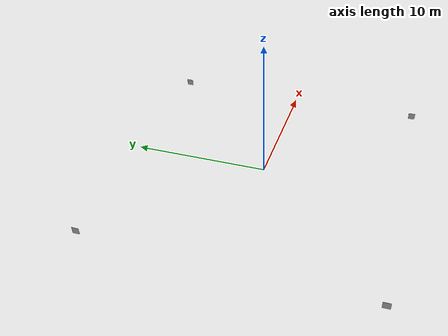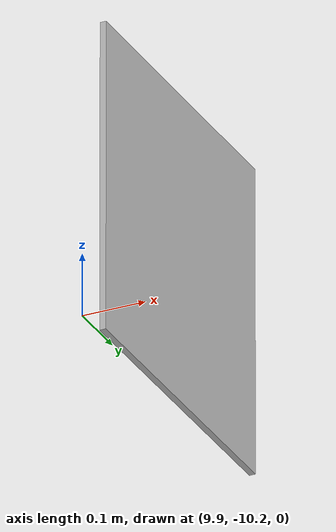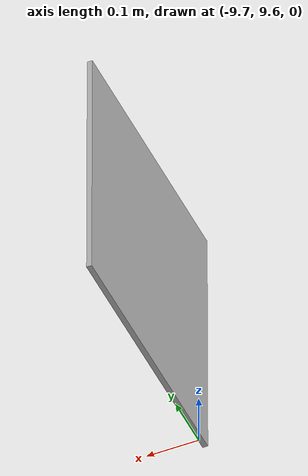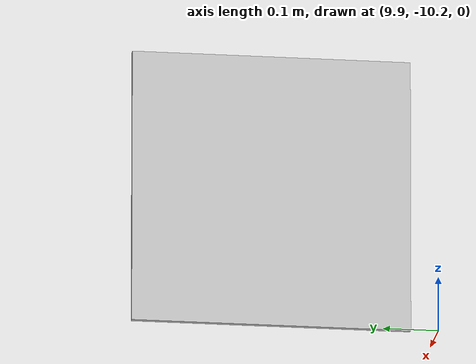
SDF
<?xml version='1.0'?>
<sdf version='1.7'>
  <model name='Aruco_rectangle'>
    <model name='Marker0'>
      <static>1</static>
      <link name='link'>
        <visual name='visual'>
          <geometry>
            <mesh>
              <uri>model://marker0/meshes/Marker0.dae</uri>
              <scale>1 1 1</scale>
            </mesh>
          </geometry>
        </visual>
      </link>
      <pose>-10.0075 -10.1426 0 0 -0 0</pose>
    </model>
    <model name='Marker1'>
      <static>1</static>
      <link name='link'>
        <visual name='visual'>
          <geometry>
            <mesh>
              <uri>model://marker1/meshes/Marker1.dae</uri>
              <scale>1 1 1</scale>
            </mesh>
          </geometry>
        </visual>
      </link>
      <pose>-9.6989 9.82016 0.009895 0 -0 0</pose>
    </model>
    <model name='Marker10'>
      <static>1</static>
      <link name='link'>
        <visual name='visual'>
          <geometry>
            <mesh>
              <uri>model://marker10/meshes/Marker10.dae</uri>
              <scale>1 1 1</scale>
            </mesh>
          </geometry>
        </visual>
      </link>
      <pose>9.90863 -9.9009 0 0 -0 0</pose>
    </model>
    <model name='Marker11'>
      <static>1</static>
      <link name='link'>
        <visual name='visual'>
          <geometry>
            <mesh>
              <uri>model://marker11/meshes/Marker11.dae</uri>
              <scale>1 1 1</scale>
            </mesh>
          </geometry>
        </visual>
      </link>
      <pose>9.98015 9.90014 0 0 -0 0</pose>
    </model>
    <static>0</static>
    <allow_auto_disable>1</allow_auto_disable>
  </model>
</sdf>
